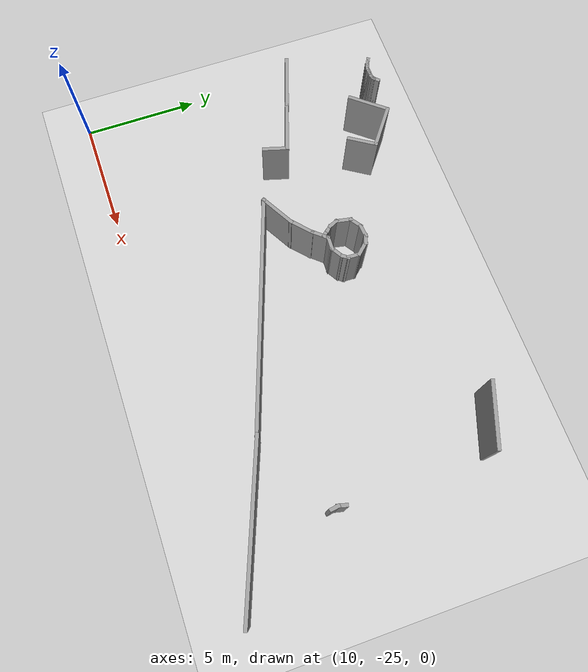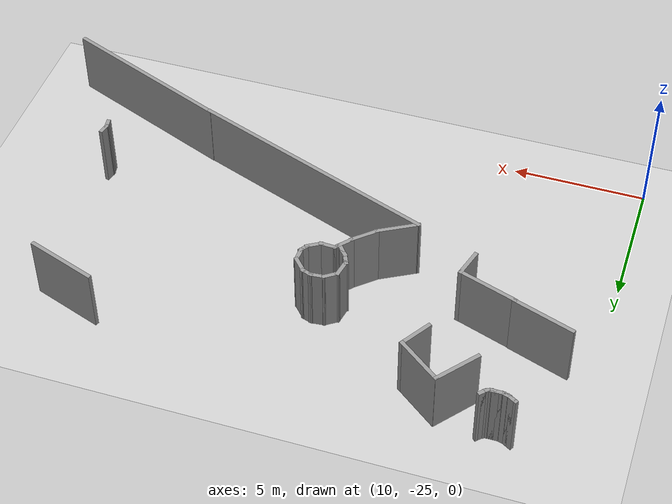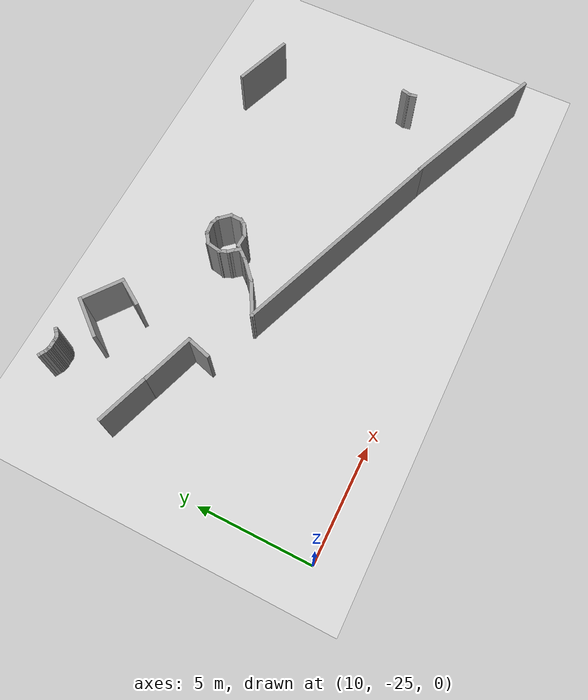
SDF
<sdf version="1.6">
 <world name="default">
  <model name="ground_plane">
   <static>1</static>
   <link name="link">
    <collision name="collision">
     <geometry><plane><normal>0 0 1</normal><size>100 100</size></plane></geometry>
     <surface><friction><ode><mu>100</mu><mu2>50</mu2></ode></friction></surface>
    </collision>
    <visual name="visual">
     <cast_shadows>0</cast_shadows>
     <geometry><plane><normal>0 0 1</normal><size>100 100</size></plane></geometry>
     <material>
      <script><uri>file://media/materials/scripts/gazebo.material</uri><name>Gazebo/Grey</name></script>
     </material>
    </visual>
   </link>
  </model>
  <model name="scene">
   <pose>1.8013 -1.70593 0 0 -0 0</pose>
   <link name="Wall_744">
    <collision name="Wall_744_Collision">
     <geometry><box><size>2.74073 0.15 2.5</size></box></geometry>
     <pose>0 0 1.25 0 -0 0</pose>
    </collision>
    <visual name="Wall_744_Visual">
     <pose>0 0 1.25 0 -0 0</pose>
     <geometry><box><size>2.74073 0.15 2.5</size></box></geometry>
     <material>
      <script><uri>file://media/materials/scripts/gazebo.material</uri><name>Gazebo/Grey</name></script>
      <ambient>1 1 1 1</ambient>
     </material>
    </visual>
    <pose>26.7798 -11.6786 0 0 0 -0.331884</pose>
   </link>
   <link name="Wall_809">
    <collision name="Wall_809_Collision">
     <geometry><box><size>6.88318 0.15 2.5</size></box></geometry>
     <pose>0 0 1.25 0 -0 0</pose>
    </collision>
    <visual name="Wall_809_Visual">
     <pose>0 0 1.25 0 -0 0</pose>
     <geometry><box><size>6.88318 0.15 2.5</size></box></geometry>
     <material>
      <script><uri>file://media/materials/scripts/gazebo.material</uri><name>Gazebo/Grey</name></script>
      <ambient>1 1 1 1</ambient>
     </material>
    </visual>
    <pose>27.7005 -21.6514 0 0 0 -0.379125</pose>
   </link>
   <link name="Wall_815">
    <collision name="Wall_815_Collision">
     <geometry><box><size>9.9238 0.15 2.5</size></box></geometry>
     <pose>0 0 1.25 0 -0 0</pose>
    </collision>
    <visual name="Wall_815_Visual">
     <pose>0 0 1.25 0 -0 0</pose>
     <geometry><box><size>9.9238 0.15 2.5</size></box></geometry>
     <material>
      <script><uri>file://media/materials/scripts/gazebo.material</uri><name>Gazebo/Grey</name></script>
      <ambient>1 1 1 1</ambient>
     </material>
    </visual>
    <pose>20.0054 -18.7493 0 0 -0 2.79106</pose>
   </link>
   <link name="Wall_816">
    <collision name="Wall_816_Collision">
     <geometry><box><size>1.68014 0.15 2.5</size></box></geometry>
     <pose>0 0 1.25 0 -0 0</pose>
    </collision>
    <visual name="Wall_816_Visual">
     <pose>0 0 1.25 0 -0 0</pose>
     <geometry><box><size>1.68014 0.15 2.5</size></box></geometry>
     <material>
      <script><uri>file://media/materials/scripts/gazebo.material</uri><name>Gazebo/Grey</name></script>
      <ambient>1 1 1 1</ambient>
     </material>
    </visual>
    <pose>16.0609 -16.697 0 0 -0 0.511027</pose>
   </link>
   <link name="Wall_817">
    <collision name="Wall_817_Collision">
     <geometry><box><size>1.14494 0.15 2.5</size></box></geometry>
     <pose>0 0 1.25 0 -0 0</pose>
    </collision>
    <visual name="Wall_817_Visual">
     <pose>0 0 1.25 0 -0 0</pose>
     <geometry><box><size>1.14494 0.15 2.5</size></box></geometry>
     <material>
      <script><uri>file://media/materials/scripts/gazebo.material</uri><name>Gazebo/Grey</name></script>
      <ambient>1 1 1 1</ambient>
     </material>
    </visual>
    <pose>17.078 -15.9924 0 0 -0 0.726399</pose>
   </link>
   <link name="Wall_818">
    <collision name="Wall_818_Collision">
     <geometry><box><size>0.832792 0.15 2.5</size></box></geometry>
     <pose>0 0 1.25 0 -0 0</pose>
    </collision>
    <visual name="Wall_818_Visual">
     <pose>0 0 1.25 0 -0 0</pose>
     <geometry><box><size>0.832792 0.15 2.5</size></box></geometry>
     <material>
      <script><uri>file://media/materials/scripts/gazebo.material</uri><name>Gazebo/Grey</name></script>
      <ambient>1 1 1 1</ambient>
     </material>
    </visual>
    <pose>17.6747 -15.3829 0 0 -0 0.852176</pose>
   </link>
   <link name="Wall_820">
    <collision name="Wall_820_Collision">
     <geometry><box><size>0.679716 0.15 2.5</size></box></geometry>
     <pose>0 0 1.25 0 -0 0</pose>
    </collision>
    <visual name="Wall_820_Visual">
     <pose>0 0 1.25 0 -0 0</pose>
     <geometry><box><size>0.679716 0.15 2.5</size></box></geometry>
     <material>
      <script><uri>file://media/materials/scripts/gazebo.material</uri><name>Gazebo/Grey</name></script>
      <ambient>1 1 1 1</ambient>
     </material>
    </visual>
    <pose>18.1495 -15.1372 0 0 0 -0.042438</pose>
   </link>
   <link name="Wall_821">
    <collision name="Wall_821_Collision">
     <geometry><box><size>0.665872 0.15 2.5</size></box></geometry>
     <pose>0 0 1.25 0 -0 0</pose>
    </collision>
    <visual name="Wall_821_Visual">
     <pose>0 0 1.25 0 -0 0</pose>
     <geometry><box><size>0.665872 0.15 2.5</size></box></geometry>
     <material>
      <script><uri>file://media/materials/scripts/gazebo.material</uri><name>Gazebo/Grey</name></script>
      <ambient>1 1 1 1</ambient>
     </material>
    </visual>
    <pose>18.6203 -15.0148 0 0 -0 0.544257</pose>
   </link>
   <link name="Wall_822">
    <collision name="Wall_822_Collision">
     <geometry><box><size>0.40692 0.15 2.5</size></box></geometry>
     <pose>0 0 1.25 0 -0 0</pose>
    </collision>
    <visual name="Wall_822_Visual">
     <pose>0 0 1.25 0 -0 0</pose>
     <geometry><box><size>0.40692 0.15 2.5</size></box></geometry>
     <material>
      <script><uri>file://media/materials/scripts/gazebo.material</uri><name>Gazebo/Grey</name></script>
      <ambient>1 1 1 1</ambient>
     </material>
    </visual>
    <pose>18.9142 -14.7612 0 0 -0 0.964273</pose>
   </link>
   <link name="Wall_823">
    <collision name="Wall_823_Collision">
     <geometry><box><size>0.600419 0.15 2.5</size></box></geometry>
     <pose>0 0 1.25 0 -0 0</pose>
    </collision>
    <visual name="Wall_823_Visual">
     <pose>0 0 1.25 0 -0 0</pose>
     <geometry><box><size>0.600419 0.15 2.5</size></box></geometry>
     <material>
      <script><uri>file://media/materials/scripts/gazebo.material</uri><name>Gazebo/Grey</name></script>
      <ambient>1 1 1 1</ambient>
     </material>
    </visual>
    <pose>18.9816 -14.4306 0 0 -0 1.53203</pose>
   </link>
   <link name="Wall_824">
    <collision name="Wall_824_Collision">
     <geometry><box><size>0.732481 0.15 2.5</size></box></geometry>
     <pose>0 0 1.25 0 -0 0</pose>
    </collision>
    <visual name="Wall_824_Visual">
     <pose>0 0 1.25 0 -0 0</pose>
     <geometry><box><size>0.732481 0.15 2.5</size></box></geometry>
     <material>
      <script><uri>file://media/materials/scripts/gazebo.material</uri><name>Gazebo/Grey</name></script>
      <ambient>1 1 1 1</ambient>
     </material>
    </visual>
    <pose>18.7944 -13.9757 0 0 -0 2.30904</pose>
   </link>
   <link name="Wall_825">
    <collision name="Wall_825_Collision">
     <geometry><box><size>0.495018 0.15 2.5</size></box></geometry>
     <pose>0 0 1.25 0 -0 0</pose>
    </collision>
    <visual name="Wall_825_Visual">
     <pose>0 0 1.25 0 -0 0</pose>
     <geometry><box><size>0.495018 0.15 2.5</size></box></geometry>
     <material>
      <script><uri>file://media/materials/scripts/gazebo.material</uri><name>Gazebo/Grey</name></script>
      <ambient>1 1 1 1</ambient>
     </material>
    </visual>
    <pose>18.449 -13.7063 0 0 -0 2.82375</pose>
   </link>
   <link name="Wall_826">
    <collision name="Wall_826_Collision">
     <geometry><box><size>0.612682 0.15 2.5</size></box></geometry>
     <pose>0 0 1.25 0 -0 0</pose>
    </collision>
    <visual name="Wall_826_Visual">
     <pose>0 0 1.25 0 -0 0</pose>
     <geometry><box><size>0.612682 0.15 2.5</size></box></geometry>
     <material>
      <script><uri>file://media/materials/scripts/gazebo.material</uri><name>Gazebo/Grey</name></script>
      <ambient>1 1 1 1</ambient>
     </material>
    </visual>
    <pose>18.0692 -13.6724 0 0 0 -3.05522</pose>
   </link>
   <link name="Wall_827">
    <collision name="Wall_827_Collision">
     <geometry><box><size>0.629501 0.15 2.5</size></box></geometry>
     <pose>0 0 1.25 0 -0 0</pose>
    </collision>
    <visual name="Wall_827_Visual">
     <pose>0 0 1.25 0 -0 0</pose>
     <geometry><box><size>0.629501 0.15 2.5</size></box></geometry>
     <material>
      <script><uri>file://media/materials/scripts/gazebo.material</uri><name>Gazebo/Grey</name></script>
      <ambient>1 1 1 1</ambient>
     </material>
    </visual>
    <pose>17.6278 -13.8299 0 0 0 -2.53033</pose>
   </link>
   <link name="Wall_828">
    <collision name="Wall_828_Collision">
     <geometry><box><size>0.738041 0.15 2.5</size></box></geometry>
     <pose>0 0 1.25 0 -0 0</pose>
    </collision>
    <visual name="Wall_828_Visual">
     <pose>0 0 1.25 0 -0 0</pose>
     <geometry><box><size>0.738041 0.15 2.5</size></box></geometry>
     <material>
      <script><uri>file://media/materials/scripts/gazebo.material</uri><name>Gazebo/Grey</name></script>
      <ambient>1 1 1 1</ambient>
     </material>
    </visual>
    <pose>17.361 -14.2562 0 0 0 -1.76244</pose>
   </link>
   <link name="Wall_829">
    <collision name="Wall_829_Collision">
     <geometry><box><size>0.517355 0.15 2.5</size></box></geometry>
     <pose>0 0 1.25 0 -0 0</pose>
    </collision>
    <visual name="Wall_829_Visual">
     <pose>0 0 1.25 0 -0 0</pose>
     <geometry><box><size>0.517355 0.15 2.5</size></box></geometry>
     <material>
      <script><uri>file://media/materials/scripts/gazebo.material</uri><name>Gazebo/Grey</name></script>
      <ambient>1 1 1 1</ambient>
     </material>
    </visual>
    <pose>17.367 -14.7118 0 0 0 -1.14091</pose>
   </link>
   <link name="Wall_830">
    <collision name="Wall_830_Collision">
     <geometry><box><size>0.371237 0.15 2.5</size></box></geometry>
     <pose>0 0 1.25 0 -0 0</pose>
    </collision>
    <visual name="Wall_830_Visual">
     <pose>0 0 1.25 0 -0 0</pose>
     <geometry><box><size>0.371237 0.15 2.5</size></box></geometry>
     <material>
      <script><uri>file://media/materials/scripts/gazebo.material</uri><name>Gazebo/Grey</name></script>
      <ambient>1 1 1 1</ambient>
     </material>
    </visual>
    <pose>17.5201 -14.9731 0 0 0 -0.806513</pose>
   </link>
   <link name="Wall_831">
    <collision name="Wall_831_Collision">
     <geometry><box><size>0.426475 0.15 2.5</size></box></geometry>
     <pose>0 0 1.25 0 -0 0</pose>
    </collision>
    <visual name="Wall_831_Visual">
     <pose>0 0 1.25 0 -0 0</pose>
     <geometry><box><size>0.426475 0.15 2.5</size></box></geometry>
     <material>
      <script><uri>file://media/materials/scripts/gazebo.material</uri><name>Gazebo/Grey</name></script>
      <ambient>1 1 1 1</ambient>
     </material>
    </visual>
    <pose>17.6679 -15.1614 0 0 0 -0.901485</pose>
   </link>
   <link name="Wall_854">
    <collision name="Wall_854_Collision">
     <geometry><box><size>0.436868 0.15 2.5</size></box></geometry>
     <pose>0 0 1.25 0 -0 0</pose>
    </collision>
    <visual name="Wall_854_Visual">
     <pose>0 0 1.25 0 -0 0</pose>
     <geometry><box><size>0.436868 0.15 2.5</size></box></geometry>
     <material>
      <script><uri>file://media/materials/scripts/gazebo.material</uri><name>Gazebo/Grey</name></script>
      <ambient>1 1 1 1</ambient>
     </material>
    </visual>
    <pose>28.0037 -18.5827 0 0 -0 1.71619</pose>
   </link>
   <link name="Wall_855">
    <collision name="Wall_855_Collision">
     <geometry><box><size>0.457852 0.15 2.5</size></box></geometry>
     <pose>0 0 1.25 0 -0 0</pose>
    </collision>
    <visual name="Wall_855_Visual">
     <pose>0 0 1.25 0 -0 0</pose>
     <geometry><box><size>0.457852 0.15 2.5</size></box></geometry>
     <material>
      <script><uri>file://media/materials/scripts/gazebo.material</uri><name>Gazebo/Grey</name></script>
      <ambient>1 1 1 1</ambient>
     </material>
    </visual>
    <pose>28.0181 -18.2993 0 0 -0 1.34016</pose>
   </link>
   <link name="Wall_894">
    <collision name="Wall_894_Collision">
     <geometry><box><size>2.44463 0.15 2.5</size></box></geometry>
     <pose>0 0 1.25 0 -0 0</pose>
    </collision>
    <visual name="Wall_894_Visual">
     <pose>0 0 1.25 0 -0 0</pose>
     <geometry><box><size>2.44463 0.15 2.5</size></box></geometry>
     <material>
      <script><uri>file://media/materials/scripts/gazebo.material</uri><name>Gazebo/Grey</name></script>
      <ambient>1 1 1 1</ambient>
     </material>
    </visual>
    <pose>10.2243 -14.2597 0 0 0 -0.326083</pose>
   </link>
   <link name="Wall_895">
    <collision name="Wall_895_Collision">
     <geometry><box><size>2.34978 0.15 2.5</size></box></geometry>
     <pose>0 0 1.25 0 -0 0</pose>
    </collision>
    <visual name="Wall_895_Visual">
     <pose>0 0 1.25 0 -0 0</pose>
     <geometry><box><size>2.34978 0.15 2.5</size></box></geometry>
     <material>
      <script><uri>file://media/materials/scripts/gazebo.material</uri><name>Gazebo/Grey</name></script>
      <ambient>1 1 1 1</ambient>
     </material>
    </visual>
    <pose>12.342 -14.9876 0 0 0 -0.321721</pose>
   </link>
   <link name="Wall_896">
    <collision name="Wall_896_Collision">
     <geometry><box><size>1.15287 0.15 2.5</size></box></geometry>
     <pose>0 0 1.25 0 -0 0</pose>
    </collision>
    <visual name="Wall_896_Visual">
     <pose>0 0 1.25 0 -0 0</pose>
     <geometry><box><size>1.15287 0.15 2.5</size></box></geometry>
     <material>
      <script><uri>file://media/materials/scripts/gazebo.material</uri><name>Gazebo/Grey</name></script>
      <ambient>1 1 1 1</ambient>
     </material>
    </visual>
    <pose>13.2586 -15.8171 0 0 0 -1.85266</pose>
   </link>
   <link name="Wall_900">
    <collision name="Wall_900_Collision">
     <geometry><box><size>1.34348 0.15 2.5</size></box></geometry>
     <pose>0 0 1.25 0 -0 0</pose>
    </collision>
    <visual name="Wall_900_Visual">
     <pose>0 0 1.25 0 -0 0</pose>
     <geometry><box><size>1.34348 0.15 2.5</size></box></geometry>
     <material>
      <script><uri>file://media/materials/scripts/gazebo.material</uri><name>Gazebo/Grey</name></script>
      <ambient>1 1 1 1</ambient>
     </material>
    </visual>
    <pose>14.1149 -12.1823 0 0 -0 1.00055</pose>
   </link>
   <link name="Wall_901">
    <collision name="Wall_901_Collision">
     <geometry><box><size>1.97077 0.15 2.5</size></box></geometry>
     <pose>0 0 1.25 0 -0 0</pose>
    </collision>
    <visual name="Wall_901_Visual">
     <pose>0 0 1.25 0 -0 0</pose>
     <geometry><box><size>1.97077 0.15 2.5</size></box></geometry>
     <material>
      <script><uri>file://media/materials/scripts/gazebo.material</uri><name>Gazebo/Grey</name></script>
      <ambient>1 1 1 1</ambient>
     </material>
    </visual>
    <pose>13.6994 -11.1293 0 0 -0 2.49196</pose>
   </link>
   <link name="Wall_902">
    <collision name="Wall_902_Collision">
     <geometry><box><size>1.85925 0.15 2.5</size></box></geometry>
     <pose>0 0 1.25 0 -0 0</pose>
    </collision>
    <visual name="Wall_902_Visual">
     <pose>0 0 1.25 0 -0 0</pose>
     <geometry><box><size>1.85925 0.15 2.5</size></box></geometry>
     <material>
      <script><uri>file://media/materials/scripts/gazebo.material</uri><name>Gazebo/Grey</name></script>
      <ambient>1 1 1 1</ambient>
     </material>
    </visual>
    <pose>12.4226 -11.2417 0 0 0 -2.25361</pose>
   </link>
   <link name="Wall_913">
    <collision name="Wall_913_Collision">
     <geometry><box><size>0.25 0.15 2.5</size></box></geometry>
     <pose>0 0 1.25 0 -0 0</pose>
    </collision>
    <visual name="Wall_913_Visual">
     <pose>0 0 1.25 0 -0 0</pose>
     <geometry><box><size>0.25 0.15 2.5</size></box></geometry>
     <material>
      <script><uri>file://media/materials/scripts/gazebo.material</uri><name>Gazebo/Grey</name></script>
      <ambient>1 1 1 1</ambient>
     </material>
    </visual>
    <pose>11.4128 -10.4557 0 0 0 -2.35619</pose>
   </link>
   <link name="Wall_914">
    <collision name="Wall_914_Collision">
     <geometry><box><size>0.25 0.15 2.5</size></box></geometry>
     <pose>0 0 1.25 0 -0 0</pose>
    </collision>
    <visual name="Wall_914_Visual">
     <pose>0 0 1.25 0 -0 0</pose>
     <geometry><box><size>0.25 0.15 2.5</size></box></geometry>
     <material>
      <script><uri>file://media/materials/scripts/gazebo.material</uri><name>Gazebo/Grey</name></script>
      <ambient>1 1 1 1</ambient>
     </material>
    </visual>
    <pose>11.3421 -10.5264 0 0 0 -2.35619</pose>
   </link>
   <link name="Wall_915">
    <collision name="Wall_915_Collision">
     <geometry><box><size>0.25 0.15 2.5</size></box></geometry>
     <pose>0 0 1.25 0 -0 0</pose>
    </collision>
    <visual name="Wall_915_Visual">
     <pose>0 0 1.25 0 -0 0</pose>
     <geometry><box><size>0.25 0.15 2.5</size></box></geometry>
     <material>
      <script><uri>file://media/materials/scripts/gazebo.material</uri><name>Gazebo/Grey</name></script>
      <ambient>1 1 1 1</ambient>
     </material>
    </visual>
    <pose>11.2635 -10.5868 0 0 0 -2.61799</pose>
   </link>
   <link name="Wall_916">
    <collision name="Wall_916_Collision">
     <geometry><box><size>0.25 0.15 2.5</size></box></geometry>
     <pose>0 0 1.25 0 -0 0</pose>
    </collision>
    <visual name="Wall_916_Visual">
     <pose>0 0 1.25 0 -0 0</pose>
     <geometry><box><size>0.25 0.15 2.5</size></box></geometry>
     <material>
      <script><uri>file://media/materials/scripts/gazebo.material</uri><name>Gazebo/Grey</name></script>
      <ambient>1 1 1 1</ambient>
     </material>
    </visual>
    <pose>11.1719 -10.6247 0 0 0 -2.87979</pose>
   </link>
   <link name="Wall_917">
    <collision name="Wall_917_Collision">
     <geometry><box><size>0.25 0.15 2.5</size></box></geometry>
     <pose>0 0 1.25 0 -0 0</pose>
    </collision>
    <visual name="Wall_917_Visual">
     <pose>0 0 1.25 0 -0 0</pose>
     <geometry><box><size>0.25 0.15 2.5</size></box></geometry>
     <material>
      <script><uri>file://media/materials/scripts/gazebo.material</uri><name>Gazebo/Grey</name></script>
      <ambient>1 1 1 1</ambient>
     </material>
    </visual>
    <pose>11.0736 -10.6376 0 0 -0 3.14159</pose>
   </link>
   <link name="Wall_918">
    <collision name="Wall_918_Collision">
     <geometry><box><size>0.25 0.15 2.5</size></box></geometry>
     <pose>0 0 1.25 0 -0 0</pose>
    </collision>
    <visual name="Wall_918_Visual">
     <pose>0 0 1.25 0 -0 0</pose>
     <geometry><box><size>0.25 0.15 2.5</size></box></geometry>
     <material>
      <script><uri>file://media/materials/scripts/gazebo.material</uri><name>Gazebo/Grey</name></script>
      <ambient>1 1 1 1</ambient>
     </material>
    </visual>
    <pose>10.9736 -10.6376 0 0 -0 3.14159</pose>
   </link>
   <link name="Wall_919">
    <collision name="Wall_919_Collision">
     <geometry><box><size>0.25 0.15 2.5</size></box></geometry>
     <pose>0 0 1.25 0 -0 0</pose>
    </collision>
    <visual name="Wall_919_Visual">
     <pose>0 0 1.25 0 -0 0</pose>
     <geometry><box><size>0.25 0.15 2.5</size></box></geometry>
     <material>
      <script><uri>file://media/materials/scripts/gazebo.material</uri><name>Gazebo/Grey</name></script>
      <ambient>1 1 1 1</ambient>
     </material>
    </visual>
    <pose>10.8736 -10.6376 0 0 -0 3.14159</pose>
   </link>
   <link name="Wall_920">
    <collision name="Wall_920_Collision">
     <geometry><box><size>0.25 0.15 2.5</size></box></geometry>
     <pose>0 0 1.25 0 -0 0</pose>
    </collision>
    <visual name="Wall_920_Visual">
     <pose>0 0 1.25 0 -0 0</pose>
     <geometry><box><size>0.25 0.15 2.5</size></box></geometry>
     <material>
      <script><uri>file://media/materials/scripts/gazebo.material</uri><name>Gazebo/Grey</name></script>
      <ambient>1 1 1 1</ambient>
     </material>
    </visual>
    <pose>10.7736 -10.6376 0 0 -0 3.14159</pose>
   </link>
   <link name="Wall_921">
    <collision name="Wall_921_Collision">
     <geometry><box><size>0.25 0.15 2.5</size></box></geometry>
     <pose>0 0 1.25 0 -0 0</pose>
    </collision>
    <visual name="Wall_921_Visual">
     <pose>0 0 1.25 0 -0 0</pose>
     <geometry><box><size>0.25 0.15 2.5</size></box></geometry>
     <material>
      <script><uri>file://media/materials/scripts/gazebo.material</uri><name>Gazebo/Grey</name></script>
      <ambient>1 1 1 1</ambient>
     </material>
    </visual>
    <pose>10.6753 -10.6247 0 0 -0 2.87979</pose>
   </link>
   <link name="Wall_922">
    <collision name="Wall_922_Collision">
     <geometry><box><size>0.25 0.15 2.5</size></box></geometry>
     <pose>0 0 1.25 0 -0 0</pose>
    </collision>
    <visual name="Wall_922_Visual">
     <pose>0 0 1.25 0 -0 0</pose>
     <geometry><box><size>0.25 0.15 2.5</size></box></geometry>
     <material>
      <script><uri>file://media/materials/scripts/gazebo.material</uri><name>Gazebo/Grey</name></script>
      <ambient>1 1 1 1</ambient>
     </material>
    </visual>
    <pose>10.5787 -10.5988 0 0 -0 2.87979</pose>
   </link>
   <link name="Wall_923">
    <collision name="Wall_923_Collision">
     <geometry><box><size>0.25 0.15 2.5</size></box></geometry>
     <pose>0 0 1.25 0 -0 0</pose>
    </collision>
    <visual name="Wall_923_Visual">
     <pose>0 0 1.25 0 -0 0</pose>
     <geometry><box><size>0.25 0.15 2.5</size></box></geometry>
     <material>
      <script><uri>file://media/materials/scripts/gazebo.material</uri><name>Gazebo/Grey</name></script>
      <ambient>1 1 1 1</ambient>
     </material>
    </visual>
    <pose>10.4871 -10.5609 0 0 -0 2.61799</pose>
   </link>
   <link name="Wall_924">
    <collision name="Wall_924_Collision">
     <geometry><box><size>0.25 0.15 2.5</size></box></geometry>
     <pose>0 0 1.25 0 -0 0</pose>
    </collision>
    <visual name="Wall_924_Visual">
     <pose>0 0 1.25 0 -0 0</pose>
     <geometry><box><size>0.25 0.15 2.5</size></box></geometry>
     <material>
      <script><uri>file://media/materials/scripts/gazebo.material</uri><name>Gazebo/Grey</name></script>
      <ambient>1 1 1 1</ambient>
     </material>
    </visual>
    <pose>10.4005 -10.5109 0 0 -0 2.61799</pose>
   </link>
   <link name="Wall_925">
    <collision name="Wall_925_Collision">
     <geometry><box><size>0.25 0.15 2.5</size></box></geometry>
     <pose>0 0 1.25 0 -0 0</pose>
    </collision>
    <visual name="Wall_925_Visual">
     <pose>0 0 1.25 0 -0 0</pose>
     <geometry><box><size>0.25 0.15 2.5</size></box></geometry>
     <material>
      <script><uri>file://media/materials/scripts/gazebo.material</uri><name>Gazebo/Grey</name></script>
      <ambient>1 1 1 1</ambient>
     </material>
    </visual>
    <pose>10.3139 -10.4609 0 0 -0 2.61799</pose>
   </link>
   <static>1</static>
  </model>
 </world>
</sdf>
